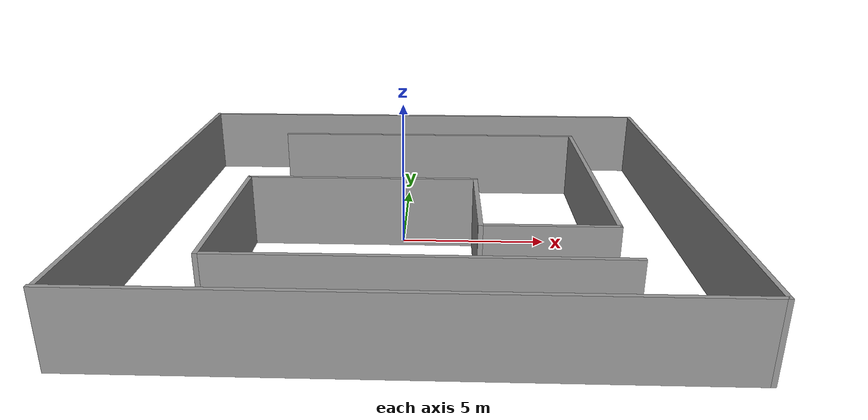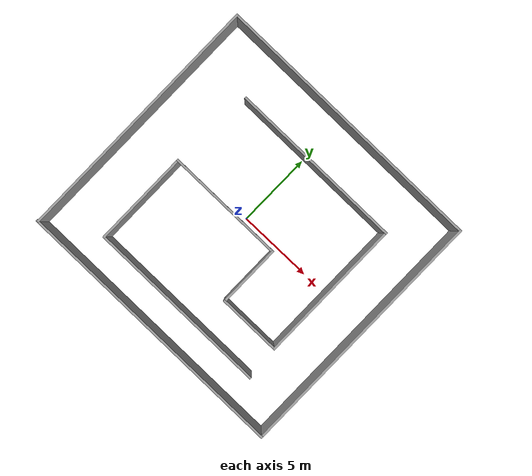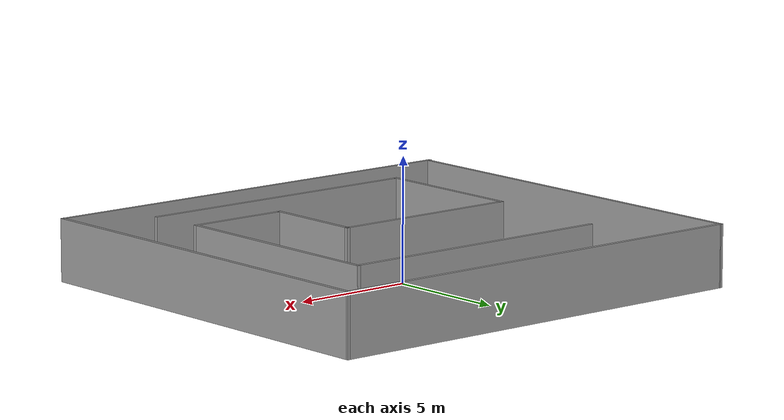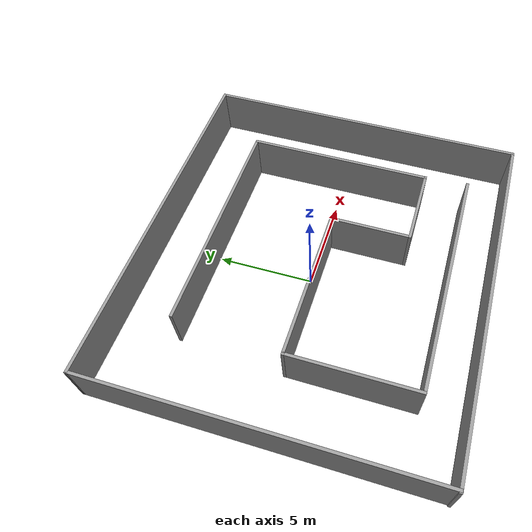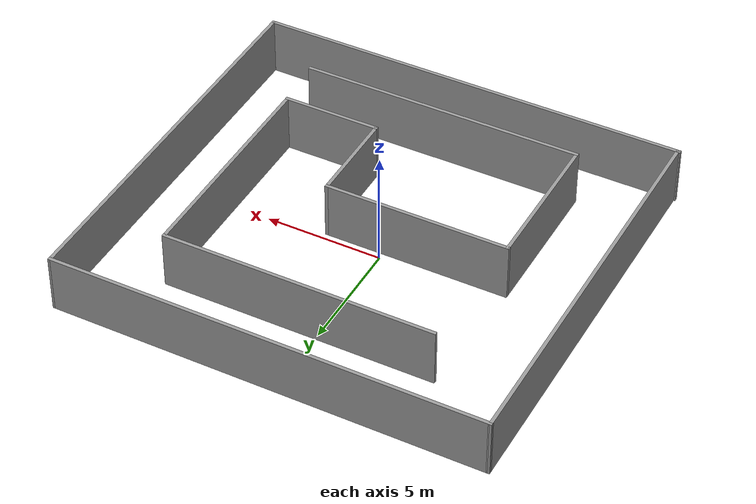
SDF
<?xml version='1.0'?>
<sdf version='1.7'>
  <model name='world1'>
    <pose>0.410855 -0.213693 0 0 -0 0</pose>
    <link name='Wall_17'>
      <collision name='Wall_17_Collision'>
        <geometry>
          <box>
            <size>17.25 0.15 2.5</size>
          </box>
        </geometry>
        <pose>0 0 1.25 0 -0 0</pose>
      </collision>
      <visual name='Wall_17_Visual'>
        <pose>0 0 1.25 0 -0 0</pose>
        <geometry>
          <box>
            <size>17.25 0.15 2.5</size>
          </box>
        </geometry>
        <material>
          <script>
            <uri>file://media/materials/scripts/gazebo.material</uri>
            <name>Gazebo/Grey</name>
          </script>
          <ambient>1 1 1 1</ambient>
        </material>
        <meta>
          <layer>0</layer>
        </meta>
      </visual>
      <pose>-9.24338 0.009328 0 0 -0 -1.5708</pose>
    </link>
    <link name='Wall_19'>
      <collision name='Wall_19_Collision'>
        <geometry>
          <box>
            <size>18.75 0.15 2.5</size>
          </box>
        </geometry>
        <pose>0 0 1.25 0 -0 0</pose>
      </collision>
      <visual name='Wall_19_Visual'>
        <pose>0 0 1.25 0 -0 0</pose>
        <geometry>
          <box>
            <size>18.75 0.15 2.5</size>
          </box>
        </geometry>
        <material>
          <script>
            <uri>file://media/materials/scripts/gazebo.material</uri>
            <name>Gazebo/Grey</name>
          </script>
          <ambient>1 1 1 1</ambient>
        </material>
        <meta>
          <layer>0</layer>
        </meta>
      </visual>
      <pose>-3.8e-05 -8.5594 0 0 -0 0</pose>
    </link>
    <link name='Wall_21'>
      <collision name='Wall_21_Collision'>
        <geometry>
          <box>
            <size>17.25 0.15 2.5</size>
          </box>
        </geometry>
        <pose>0 0 1.25 0 -0 0</pose>
      </collision>
      <visual name='Wall_21_Visual'>
        <pose>0 0 1.25 0 -0 0</pose>
        <geometry>
          <box>
            <size>17.25 0.15 2.5</size>
          </box>
        </geometry>
        <material>
          <script>
            <uri>file://media/materials/scripts/gazebo.material</uri>
            <name>Gazebo/Grey</name>
          </script>
          <ambient>1 1 1 1</ambient>
        </material>
        <meta>
          <layer>0</layer>
        </meta>
      </visual>
      <pose>9.29996 -0.009402 0 0 -0 1.5708</pose>
    </link>
    <link name='Wall_22'>
      <collision name='Wall_22_Collision'>
        <geometry>
          <box>
            <size>18.6933 0.15 2.5</size>
          </box>
        </geometry>
        <pose>0 0 1.25 0 -0 0</pose>
      </collision>
      <visual name='Wall_22_Visual'>
        <pose>0 0 1.25 0 -0 0</pose>
        <geometry>
          <box>
            <size>18.6933 0.15 2.5</size>
          </box>
        </geometry>
        <material>
          <script>
            <uri>file://media/materials/scripts/gazebo.material</uri>
            <name>Gazebo/Grey</name>
          </script>
          <ambient>1 1 1 1</ambient>
        </material>
        <meta>
          <layer>0</layer>
        </meta>
      </visual>
      <pose>0.028292 8.54996 0 0 -0 3.14058</pose>
    </link>
    <link name='Wall_24'>
      <collision name='Wall_24_Collision'>
        <geometry>
          <box>
            <size>11.75 0.15 2.5</size>
          </box>
        </geometry>
        <pose>0 0 1.25 0 -0 0</pose>
      </collision>
      <visual name='Wall_24_Visual'>
        <pose>0 0 1.25 0 -0 0</pose>
        <geometry>
          <box>
            <size>11.75 0.15 2.5</size>
          </box>
        </geometry>
        <material>
          <script>
            <uri>file://media/materials/scripts/gazebo.material</uri>
            <name>Gazebo/Grey</name>
          </script>
          <ambient>1 1 1 1</ambient>
        </material>
        <meta>
          <layer>0</layer>
        </meta>
      </visual>
      <pose>0.38722 5.36539 0 0 -0 0</pose>
    </link>
    <link name='Wall_25'>
      <collision name='Wall_25_Collision'>
        <geometry>
          <box>
            <size>9.75 0.15 2.5</size>
          </box>
        </geometry>
        <pose>0 0 1.25 0 -0 0</pose>
      </collision>
      <visual name='Wall_25_Visual'>
        <pose>0 0 1.25 0 -0 0</pose>
        <geometry>
          <box>
            <size>9.75 0.15 2.5</size>
          </box>
        </geometry>
        <material>
          <script>
            <uri>file://media/materials/scripts/gazebo.material</uri>
            <name>Gazebo/Grey</name>
          </script>
          <ambient>1 1 1 1</ambient>
        </material>
        <meta>
          <layer>0</layer>
        </meta>
      </visual>
      <pose>6.18722 0.565388 0 0 -0 -1.5708</pose>
    </link>
    <link name='Wall_26'>
      <collision name='Wall_26_Collision'>
        <geometry>
          <box>
            <size>4.25 0.15 2.5</size>
          </box>
        </geometry>
        <pose>0 0 1.25 0 -0 0</pose>
      </collision>
      <visual name='Wall_26_Visual'>
        <pose>0 0 1.25 0 -0 0</pose>
        <geometry>
          <box>
            <size>4.25 0.15 2.5</size>
          </box>
        </geometry>
        <material>
          <script>
            <uri>file://media/materials/scripts/gazebo.material</uri>
            <name>Gazebo/Grey</name>
          </script>
          <ambient>1 1 1 1</ambient>
        </material>
        <meta>
          <layer>0</layer>
        </meta>
      </visual>
      <pose>4.13722 -4.23461 0 0 -0 3.14159</pose>
    </link>
    <link name='Wall_27'>
      <collision name='Wall_27_Collision'>
        <geometry>
          <box>
            <size>4.25 0.15 2.5</size>
          </box>
        </geometry>
        <pose>0 0 1.25 0 -0 0</pose>
      </collision>
      <visual name='Wall_27_Visual'>
        <pose>0 0 1.25 0 -0 0</pose>
        <geometry>
          <box>
            <size>4.25 0.15 2.5</size>
          </box>
        </geometry>
        <material>
          <script>
            <uri>file://media/materials/scripts/gazebo.material</uri>
            <name>Gazebo/Grey</name>
          </script>
          <ambient>1 1 1 1</ambient>
        </material>
        <meta>
          <layer>0</layer>
        </meta>
      </visual>
      <pose>2.08722 -2.18461 0 0 -0 1.5708</pose>
    </link>
    <link name='Wall_28'>
      <collision name='Wall_28_Collision'>
        <geometry>
          <box>
            <size>8 0.15 2.5</size>
          </box>
        </geometry>
        <pose>0 0 1.25 0 -0 0</pose>
      </collision>
      <visual name='Wall_28_Visual'>
        <pose>0 0 1.25 0 -0 0</pose>
        <geometry>
          <box>
            <size>8 0.15 2.5</size>
          </box>
        </geometry>
        <material>
          <script>
            <uri>file://media/materials/scripts/gazebo.material</uri>
            <name>Gazebo/Grey</name>
          </script>
          <ambient>1 1 1 1</ambient>
        </material>
        <meta>
          <layer>0</layer>
        </meta>
      </visual>
      <pose>-1.83778 -0.134612 0 0 -0 3.14159</pose>
    </link>
    <link name='Wall_29'>
      <collision name='Wall_29_Collision'>
        <geometry>
          <box>
            <size>6.5 0.15 2.5</size>
          </box>
        </geometry>
        <pose>0 0 1.25 0 -0 0</pose>
      </collision>
      <visual name='Wall_29_Visual'>
        <pose>0 0 1.25 0 -0 0</pose>
        <geometry>
          <box>
            <size>6.5 0.15 2.5</size>
          </box>
        </geometry>
        <material>
          <script>
            <uri>file://media/materials/scripts/gazebo.material</uri>
            <name>Gazebo/Grey</name>
          </script>
          <ambient>1 1 1 1</ambient>
        </material>
        <meta>
          <layer>0</layer>
        </meta>
      </visual>
      <pose>-5.76278 -3.30961 0 0 -0 -1.5708</pose>
    </link>
    <link name='Wall_30'>
      <collision name='Wall_30_Collision'>
        <geometry>
          <box>
            <size>12.25 0.15 2.5</size>
          </box>
        </geometry>
        <pose>0 0 1.25 0 -0 0</pose>
      </collision>
      <visual name='Wall_30_Visual'>
        <pose>0 0 1.25 0 -0 0</pose>
        <geometry>
          <box>
            <size>12.25 0.15 2.5</size>
          </box>
        </geometry>
        <material>
          <script>
            <uri>file://media/materials/scripts/gazebo.material</uri>
            <name>Gazebo/Grey</name>
          </script>
          <ambient>1 1 1 1</ambient>
        </material>
        <meta>
          <layer>0</layer>
        </meta>
      </visual>
      <pose>0.28722 -6.48461 0 0 -0 0</pose>
    </link>
    <static>1</static>
  </model>
</sdf>
